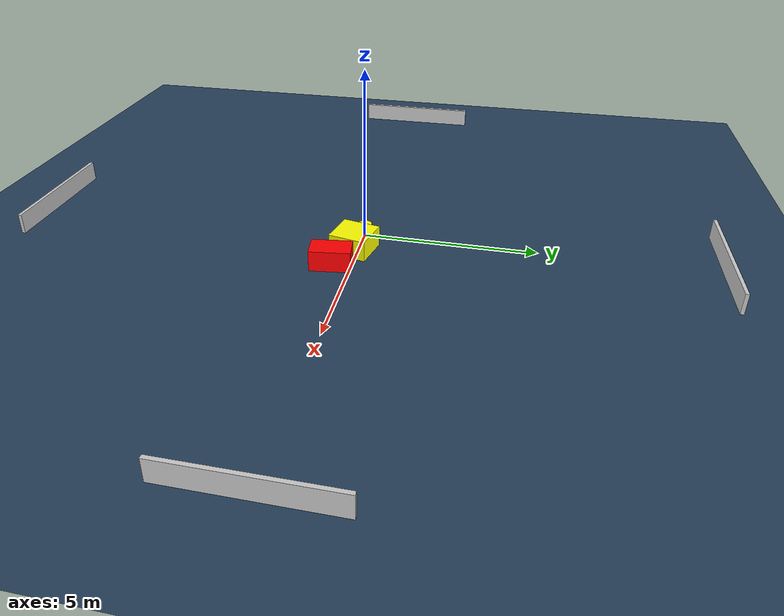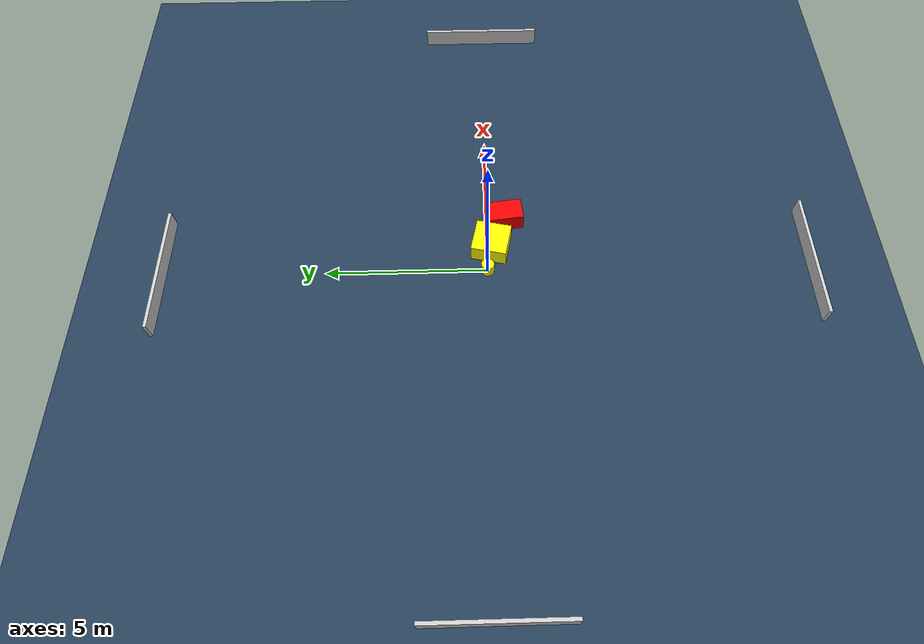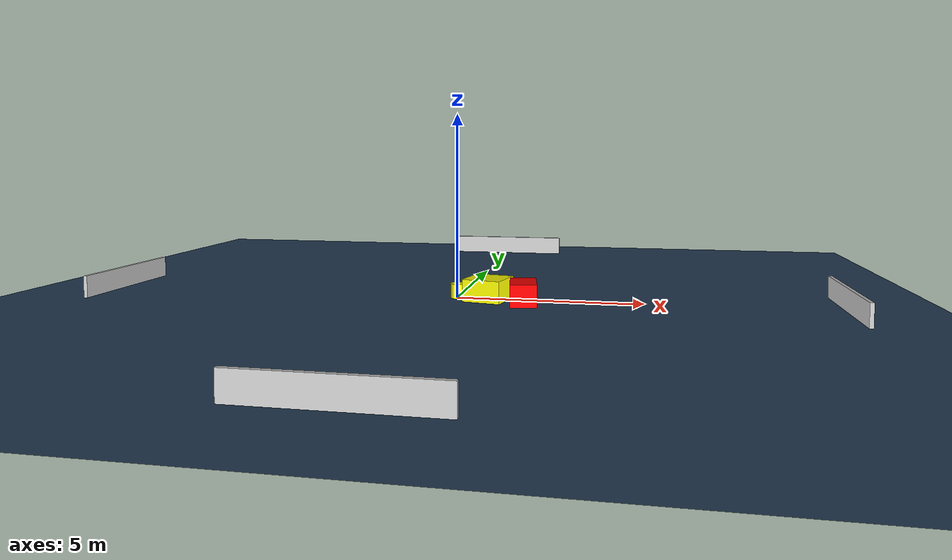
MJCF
<?xml version="1.0" ?>
<mujoco model="generated_environment">
  <option timestep="0.01" integrator="RK4" cone="elliptic"/>
  <default>
    <geom density="1"/>
  </default>
  <asset>
    <texture builtin="gradient" height="3072" name="skybox" rgb1="0.3 0.5 0.7" rgb2="0 0 0" type="skybox" width="512"/>
    <texture builtin="checker" height="300" name="groundplane" rgb1="0.2 0.3 0.4" rgb2="0.1 0.2 0.3" type="2d" width="300"/>
    <material name="groundplane" reflectance="0.2" texrepeat="5 5" texture="groundplane"/>
  </asset>
  <worldbody>
    <light dir="0 0 -1" directional="true" pos="0 0 1.5"/>
    <geom condim="3" friction="0.5 0.005 0.001" material="groundplane" name="floor" pos="0 0 0" size="0 0 0.05" type="plane"/>
    <body name="walls">
      <geom name="wall_1" condim="4" pos="-10.0 0.0 0.3" rgba="0.800000011920929 0.800000011920929 0.800000011920929 1.0" size="0.05 2.0 0.3" type="box"/>
      <geom name="wall_2" condim="4" pos="10.0 0.0 0.3" rgba="0.800000011920929 0.800000011920929 0.800000011920929 1.0" size="0.05 2.0 0.3" type="box"/>
      <geom name="wall_3" condim="4" pos="0.0 -10.0 0.3" rgba="0.800000011920929 0.800000011920929 0.800000011920929 1.0" size="2.0 0.05 0.3" type="box"/>
      <geom name="wall_4" condim="4" pos="0.0 10.0 0.3" rgba="0.800000011920929 0.800000011920929 0.800000011920929 1.0" size="2.0 0.05 0.3" type="box"/>
    </body>
    <body name="robot">
      <joint name="joint_x" type="slide" pos="0 0 0" axis="1 0 0"/>
      <joint name="joint_y" type="slide" pos="0 0 0" axis="0 1 0"/>
      <geom name="robot" type="cylinder" pos="0.0 0.0 0.2" size="0.2 0.2 0.0" mass="5.0" friction="1.0 0.005 0.0001" condim="4" rgba="1.0 1.0 0.0 1.0"/>
    </body>
    <body name="obstacle_1_movable">
      <geom name="obstacle_1_movable" condim="4" pos="0.8570886430026528 -0.12977612552106835 0.3" euler="0 0 167.70466365204703" friction="0.0 0.005 0.001" rgba="1.0 1.0 0.0 1.0" size="0.5269198239828701 0.5495516561486882 0.3" type="box" mass="0.1"/>
      <joint type="free"/>
    </body>
    <body name="obstacle_2_static">
      <geom name="obstacle_2_static" condim="4" pos="1.8653302848212416 -0.5591611753015484 0.3" euler="0 0 96.79027638401152" friction="0.0 0.005 0.001" rgba="1.0 0.0 0.0 1.0" size="0.5766529814906318 0.3499214747009116 0.3" type="box"/>
    </body>
  </worldbody>
  <actuator>
    <motor name="actuator_x" joint="joint_x" gear="1" ctrlrange="-1 1"/>
    <motor name="actuator_y" joint="joint_y" gear="1" ctrlrange="-1 1"/>
  </actuator>
</mujoco>
